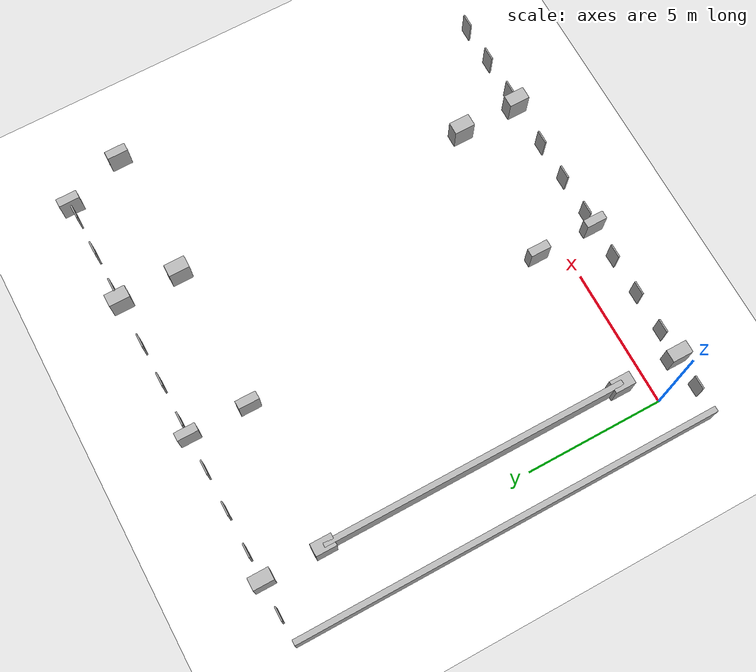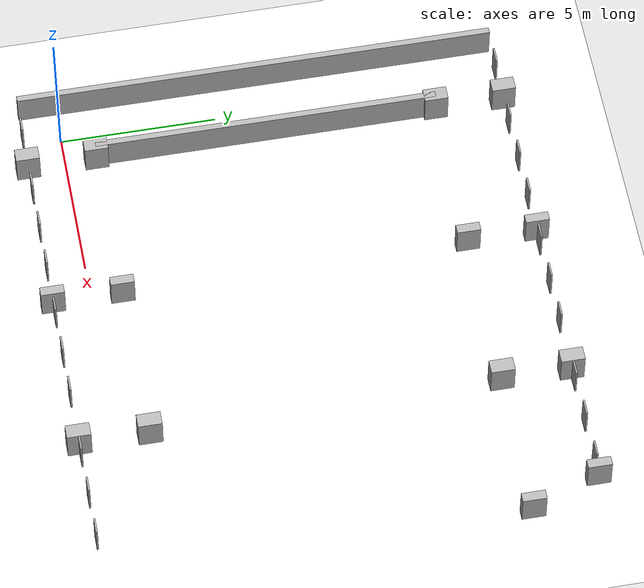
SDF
<sdf version="1.7">
 <world name="simple_corridor">
  <model name="ground_plane">
   <static>true</static>
   <link name="link">
    <collision name="collision">
     <geometry><plane><normal>0 0 1</normal><size>500 500</size></plane></geometry>
    </collision>
    <visual name="visual">
     <geometry><plane><normal>0 0 1</normal><size>500 500</size></plane></geometry>
     <material><ambient>1 1 1 1</ambient><diffuse>1 1 1 1</diffuse></material>
    </visual>
   </link>
  </model>
  <model name="wall_start_on">
   <static>true</static>
   <pose>1 6.5 0 0 0 0</pose>
   <link name="link">
    <collision name="collision"><geometry><box><size>0.2 11 2.0</size></box></geometry></collision>
    <visual name="visual">
     <geometry><box><size>0.2 11 2.0</size></box></geometry>
     <material><diffuse>0.7 0.7 0.7 1</diffuse></material>
    </visual>
   </link>
  </model>
  <model name="column_large_left_1">
   <static>true</static>
   <pose>1 12 0 0 0 0</pose>
   <link name="link">
    <collision name="collision"><geometry><box><size>0.45 0.75 2.0</size></box></geometry></collision>
    <visual name="visual">
     <geometry><box><size>0.45 0.75 2.0</size></box></geometry>
     <material><diffuse>0.7 0.7 0.7 1</diffuse></material>
    </visual>
   </link>
  </model>
  <model name="column_small_left_2">
   <static>true</static>
   <pose>6.3 12 0 0 0 0</pose>
   <link name="link">
    <collision name="collision"><geometry><box><size>0.3 0.75 2.0</size></box></geometry></collision>
    <visual name="visual">
     <geometry><box><size>0.3 0.75 2.0</size></box></geometry>
     <material><diffuse>0.7 0.7 0.7 1</diffuse></material>
    </visual>
   </link>
  </model>
  <model name="column_large_left_3">
   <static>true</static>
   <pose>11.55 12 0 0 0 0</pose>
   <link name="link">
    <collision name="collision"><geometry><box><size>0.45 0.75 2.0</size></box></geometry></collision>
    <visual name="visual">
     <geometry><box><size>0.45 0.75 2.0</size></box></geometry>
     <material><diffuse>0.7 0.7 0.7 1</diffuse></material>
    </visual>
   </link>
  </model>
  <model name="column_small_left_4">
   <static>true</static>
   <pose>16.35 12 0 0 0 0</pose>
   <link name="link">
    <collision name="collision"><geometry><box><size>0.3 0.75 2.0</size></box></geometry></collision>
    <visual name="visual">
     <geometry><box><size>0.3 0.75 2.0</size></box></geometry>
     <material><diffuse>0.7 0.7 0.7 1</diffuse></material>
    </visual>
   </link>
  </model>
  <model name="column_large_right_1">
   <static>true</static>
   <pose>1 1 0 0 0 0</pose>
   <link name="link">
    <collision name="collision"><geometry><box><size>0.45 0.75 2.0</size></box></geometry></collision>
    <visual name="visual">
     <geometry><box><size>0.45 0.75 2.0</size></box></geometry>
     <material><diffuse>0.7 0.7 0.7 1</diffuse></material>
    </visual>
   </link>
  </model>
  <model name="column_small_right_2">
   <static>true</static>
   <pose>6.3 1 0 0 0 0</pose>
   <link name="link">
    <collision name="collision"><geometry><box><size>0.3 0.75 2.0</size></box></geometry></collision>
    <visual name="visual">
     <geometry><box><size>0.3 0.75 2.0</size></box></geometry>
     <material><diffuse>0.7 0.7 0.7 1</diffuse></material>
    </visual>
   </link>
  </model>
  <model name="column_large_right_3">
   <static>true</static>
   <pose>11.55 1 0 0 0 0</pose>
   <link name="link">
    <collision name="collision"><geometry><box><size>0.45 0.75 2.0</size></box></geometry></collision>
    <visual name="visual">
     <geometry><box><size>0.45 0.75 2.0</size></box></geometry>
     <material><diffuse>0.7 0.7 0.7 1</diffuse></material>
    </visual>
   </link>
  </model>
  <model name="ban_large_left_1">
   <static>true</static>
   <pose>1 14.2 0 0 0 0</pose>
   <link name="link">
    <collision name="collision"><geometry><box><size>0.45 0.75 2.0</size></box></geometry></collision>
    <visual name="visual">
     <geometry><box><size>0.45 0.75 2.0</size></box></geometry>
     <material><diffuse>0.7 0.7 0.7 1</diffuse></material>
    </visual>
   </link>
  </model>
  <model name="ban_small_left_2">
   <static>true</static>
   <pose>6.3 14.2 0 0 0 0</pose>
   <link name="link">
    <collision name="collision"><geometry><box><size>0.3 0.75 2.0</size></box></geometry></collision>
    <visual name="visual">
     <geometry><box><size>0.3 0.75 2.0</size></box></geometry>
     <material><diffuse>0.7 0.7 0.7 1</diffuse></material>
    </visual>
   </link>
  </model>
  <model name="ban_large_left_3">
   <static>true</static>
   <pose>11.55 14.2 0 0 0 0</pose>
   <link name="link">
    <collision name="collision"><geometry><box><size>0.45 0.75 2.0</size></box></geometry></collision>
    <visual name="visual">
     <geometry><box><size>0.45 0.75 2.0</size></box></geometry>
     <material><diffuse>0.7 0.7 0.7 1</diffuse></material>
    </visual>
   </link>
  </model>
  <model name="ban_small_left_4">
   <static>true</static>
   <pose>15.53 14.2 0 0 0 0</pose>
   <link name="link">
    <collision name="collision"><geometry><box><size>0.3 0.75 2.0</size></box></geometry></collision>
    <visual name="visual">
     <geometry><box><size>0.3 0.75 2.0</size></box></geometry>
     <material><diffuse>0.7 0.7 0.7 1</diffuse></material>
    </visual>
   </link>
  </model>
  <model name="ban_large_right_1">
   <static>true</static>
   <pose>1 -1.2 0 0 0 0</pose>
   <link name="link">
    <collision name="collision"><geometry><box><size>0.45 0.75 2.0</size></box></geometry></collision>
    <visual name="visual">
     <geometry><box><size>0.45 0.75 2.0</size></box></geometry>
     <material><diffuse>0.7 0.7 0.7 1</diffuse></material>
    </visual>
   </link>
  </model>
  <model name="ban_small_right_2">
   <static>true</static>
   <pose>6.3 -1.2 0 0 0 0</pose>
   <link name="link">
    <collision name="collision"><geometry><box><size>0.3 0.75 2.0</size></box></geometry></collision>
    <visual name="visual">
     <geometry><box><size>0.3 0.75 2.0</size></box></geometry>
     <material><diffuse>0.7 0.7 0.7 1</diffuse></material>
    </visual>
   </link>
  </model>
  <model name="ban_large_right_3">
   <static>true</static>
   <pose>11.55 -1.2 0 0 0 0</pose>
   <link name="link">
    <collision name="collision"><geometry><box><size>0.45 0.75 2.0</size></box></geometry></collision>
    <visual name="visual">
     <geometry><box><size>0.45 0.75 2.0</size></box></geometry>
     <material><diffuse>0.7 0.7 0.7 1</diffuse></material>
    </visual>
   </link>
  </model>
  <model name="bar_left_1">
   <static>true</static>
   <pose>2 14.2 0 0 0 0</pose>
   <link name="link">
    <collision name="collision"><geometry><box><size>0.5 0.05 2.0</size></box></geometry></collision>
    <visual name="visual">
     <geometry><box><size>0.5 0.05 2.0</size></box></geometry>
     <material><diffuse>0.7 0.7 0.7 1</diffuse></material>
    </visual>
   </link>
  </model>
  <model name="bar_left_2">
   <static>true</static>
   <pose>3.5 14.2 0 0 0 0</pose>
   <link name="link">
    <collision name="collision"><geometry><box><size>0.5 0.05 2.0</size></box></geometry></collision>
    <visual name="visual">
     <geometry><box><size>0.5 0.05 2.0</size></box></geometry>
     <material><diffuse>0.7 0.7 0.7 1</diffuse></material>
    </visual>
   </link>
  </model>
  <model name="bar_left_3">
   <static>true</static>
   <pose>5 14.2 0 0 0 0</pose>
   <link name="link">
    <collision name="collision"><geometry><box><size>0.5 0.05 2.0</size></box></geometry></collision>
    <visual name="visual">
     <geometry><box><size>0.5 0.05 2.0</size></box></geometry>
     <material><diffuse>0.7 0.7 0.7 1</diffuse></material>
    </visual>
   </link>
  </model>
  <model name="bar_left_4">
   <static>true</static>
   <pose>6.8 14.2 0 0 0 0</pose>
   <link name="link">
    <collision name="collision"><geometry><box><size>0.5 0.05 2.0</size></box></geometry></collision>
    <visual name="visual">
     <geometry><box><size>0.5 0.05 2.0</size></box></geometry>
     <material><diffuse>0.7 0.7 0.7 1</diffuse></material>
    </visual>
   </link>
  </model>
  <model name="bar_left_5">
   <static>true</static>
   <pose>8.3 14.2 0 0 0 0</pose>
   <link name="link">
    <collision name="collision"><geometry><box><size>0.5 0.05 2.0</size></box></geometry></collision>
    <visual name="visual">
     <geometry><box><size>0.5 0.05 2.0</size></box></geometry>
     <material><diffuse>0.7 0.7 0.7 1</diffuse></material>
    </visual>
   </link>
  </model>
  <model name="bar_left_6">
   <static>true</static>
   <pose>9.8 14.2 0 0 0 0</pose>
   <link name="link">
    <collision name="collision"><geometry><box><size>0.5 0.05 2.0</size></box></geometry></collision>
    <visual name="visual">
     <geometry><box><size>0.5 0.05 2.0</size></box></geometry>
     <material><diffuse>0.7 0.7 0.7 1</diffuse></material>
    </visual>
   </link>
  </model>
  <model name="bar_left_7">
   <static>true</static>
   <pose>12 14.2 0 0 0 0</pose>
   <link name="link">
    <collision name="collision"><geometry><box><size>0.5 0.05 2.0</size></box></geometry></collision>
    <visual name="visual">
     <geometry><box><size>0.5 0.05 2.0</size></box></geometry>
     <material><diffuse>0.7 0.7 0.7 1</diffuse></material>
    </visual>
   </link>
  </model>
  <model name="bar_left_8">
   <static>true</static>
   <pose>13.5 14.2 0 0 0 0</pose>
   <link name="link">
    <collision name="collision"><geometry><box><size>0.5 0.05 2.0</size></box></geometry></collision>
    <visual name="visual">
     <geometry><box><size>0.5 0.05 2.0</size></box></geometry>
     <material><diffuse>0.7 0.7 0.7 1</diffuse></material>
    </visual>
   </link>
  </model>
  <model name="bar_left_9">
   <static>true</static>
   <pose>15 14.2 0 0 0 0</pose>
   <link name="link">
    <collision name="collision"><geometry><box><size>0.5 0.05 2.0</size></box></geometry></collision>
    <visual name="visual">
     <geometry><box><size>0.5 0.05 2.0</size></box></geometry>
     <material><diffuse>0.7 0.7 0.7 1</diffuse></material>
    </visual>
   </link>
  </model>
  <model name="bar_left_38">
   <static>true</static>
   <pose>-0.2 14.2 0 0 0 0</pose>
   <link name="link">
    <collision name="collision"><geometry><box><size>0.5 0.05 2.0</size></box></geometry></collision>
    <visual name="visual">
     <geometry><box><size>0.5 0.05 2.0</size></box></geometry>
     <material><diffuse>0.7 0.7 0.7 1</diffuse></material>
    </visual>
   </link>
  </model>
  <model name="bar_right_1">
   <static>true</static>
   <pose>2 -1.2 0 0 0 0</pose>
   <link name="link">
    <collision name="collision"><geometry><box><size>0.5 0.05 2.0</size></box></geometry></collision>
    <visual name="visual">
     <geometry><box><size>0.5 0.05 2.0</size></box></geometry>
     <material><diffuse>0.7 0.7 0.7 1</diffuse></material>
    </visual>
   </link>
  </model>
  <model name="bar_right_2">
   <static>true</static>
   <pose>3.5 -1.2 0 0 0 0</pose>
   <link name="link">
    <collision name="collision"><geometry><box><size>0.5 0.05 2.0</size></box></geometry></collision>
    <visual name="visual">
     <geometry><box><size>0.5 0.05 2.0</size></box></geometry>
     <material><diffuse>0.7 0.7 0.7 1</diffuse></material>
    </visual>
   </link>
  </model>
  <model name="bar_right_3">
   <static>true</static>
   <pose>5 -1.2 0 0 0 0</pose>
   <link name="link">
    <collision name="collision"><geometry><box><size>0.5 0.05 2.0</size></box></geometry></collision>
    <visual name="visual">
     <geometry><box><size>0.5 0.05 2.0</size></box></geometry>
     <material><diffuse>0.7 0.7 0.7 1</diffuse></material>
    </visual>
   </link>
  </model>
  <model name="bar_right_4">
   <static>true</static>
   <pose>6.8 -1.2 0 0 0 0</pose>
   <link name="link">
    <collision name="collision"><geometry><box><size>0.5 0.05 2.0</size></box></geometry></collision>
    <visual name="visual">
     <geometry><box><size>0.5 0.05 2.0</size></box></geometry>
     <material><diffuse>0.7 0.7 0.7 1</diffuse></material>
    </visual>
   </link>
  </model>
  <model name="bar_right_5">
   <static>true</static>
   <pose>8.3 -1.2 0 0 0 0</pose>
   <link name="link">
    <collision name="collision"><geometry><box><size>0.5 0.05 2.0</size></box></geometry></collision>
    <visual name="visual">
     <geometry><box><size>0.5 0.05 2.0</size></box></geometry>
     <material><diffuse>0.7 0.7 0.7 1</diffuse></material>
    </visual>
   </link>
  </model>
  <model name="bar_right_6">
   <static>true</static>
   <pose>9.8 -1.2 0 0 0 0</pose>
   <link name="link">
    <collision name="collision"><geometry><box><size>0.5 0.05 2.0</size></box></geometry></collision>
    <visual name="visual">
     <geometry><box><size>0.5 0.05 2.0</size></box></geometry>
     <material><diffuse>0.7 0.7 0.7 1</diffuse></material>
    </visual>
   </link>
  </model>
  <model name="bar_right_7">
   <static>true</static>
   <pose>12 -1.2 0 0 0 0</pose>
   <link name="link">
    <collision name="collision"><geometry><box><size>0.5 0.05 2.0</size></box></geometry></collision>
    <visual name="visual">
     <geometry><box><size>0.5 0.05 2.0</size></box></geometry>
     <material><diffuse>0.7 0.7 0.7 1</diffuse></material>
    </visual>
   </link>
  </model>
  <model name="bar_right_8">
   <static>true</static>
   <pose>13.5 -1.2 0 0 0 0</pose>
   <link name="link">
    <collision name="collision"><geometry><box><size>0.5 0.05 2.0</size></box></geometry></collision>
    <visual name="visual">
     <geometry><box><size>0.5 0.05 2.0</size></box></geometry>
     <material><diffuse>0.7 0.7 0.7 1</diffuse></material>
    </visual>
   </link>
  </model>
  <model name="bar_right_9">
   <static>true</static>
   <pose>15 -1.2 0 0 0 0</pose>
   <link name="link">
    <collision name="collision"><geometry><box><size>0.5 0.05 2.0</size></box></geometry></collision>
    <visual name="visual">
     <geometry><box><size>0.5 0.05 2.0</size></box></geometry>
     <material><diffuse>0.7 0.7 0.7 1</diffuse></material>
    </visual>
   </link>
  </model>
  <model name="bar_right_38">
   <static>true</static>
   <pose>-0.2 -1.2 0 0 0 0</pose>
   <link name="link">
    <collision name="collision"><geometry><box><size>0.5 0.05 2.0</size></box></geometry></collision>
    <visual name="visual">
     <geometry><box><size>0.5 0.05 2.0</size></box></geometry>
     <material><diffuse>0.7 0.7 0.7 1</diffuse></material>
    </visual>
   </link>
  </model>
  <model name="wall_start_under_opposite">
   <static>true</static>
   <pose>-1.2 6.5 0 0 0 0</pose>
   <link name="link">
    <collision name="collision"><geometry><box><size>0.2 15.4 2.0</size></box></geometry></collision>
    <visual name="visual">
     <geometry><box><size>0.2 15.4 2.0</size></box></geometry>
     <material><diffuse>0.7 0.7 0.7 1</diffuse></material>
    </visual>
   </link>
  </model>
  <model name="start_marker">
   <static>true</static>
   <link name="link">
    <visual name="visual">
     <geometry><cylinder><radius>0.05</radius><length>0.02</length></cylinder></geometry>
     <material><diffuse>0.1 0.8 0.1 1</diffuse></material>
    </visual>
   </link>
  </model>
 </world>
</sdf>
